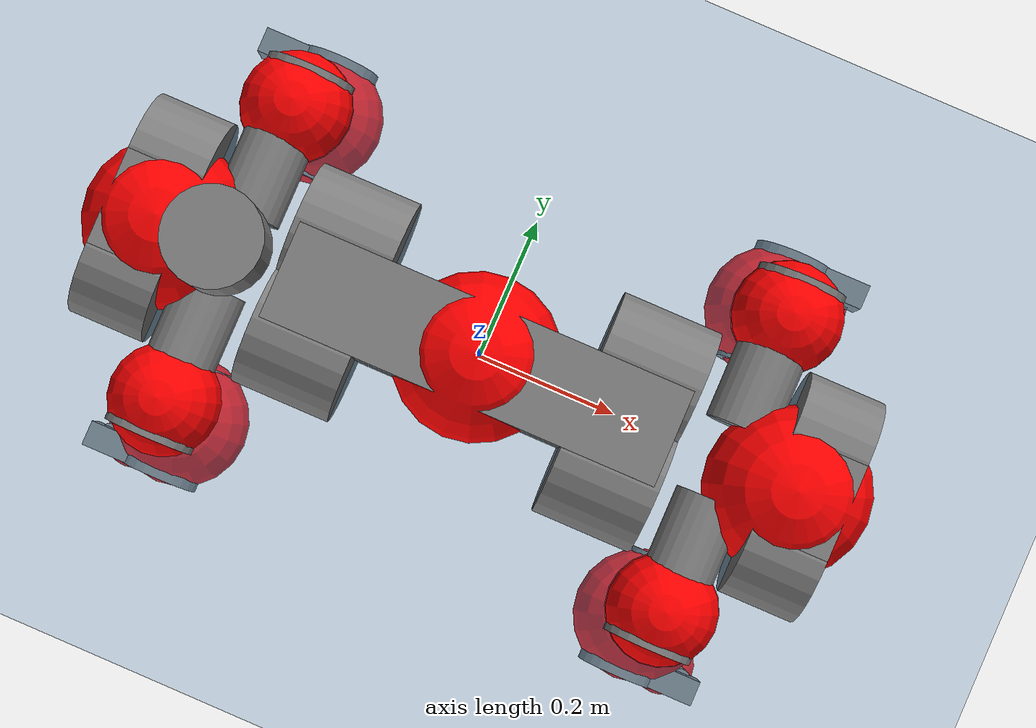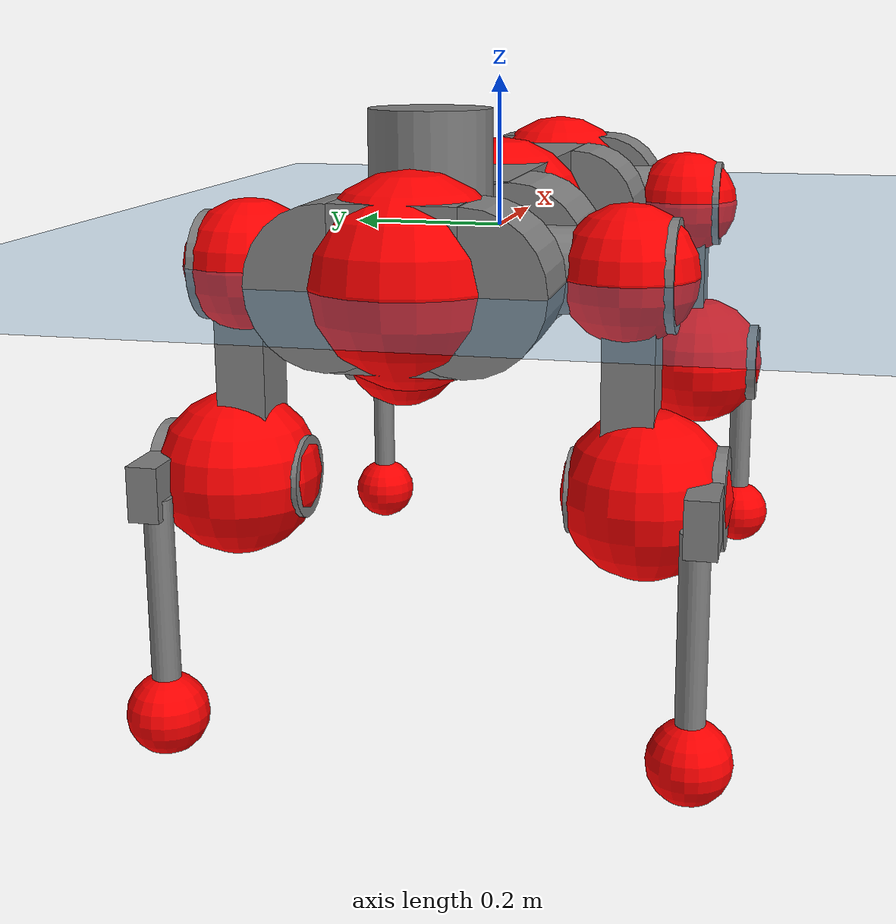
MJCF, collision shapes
<mujoco model="anymal_c">
  <compiler angle="radian" assetdir="assets" balanceinertia="true" inertiafromgeom="false"/>

  <option timestep="0.005" density="1.2" viscosity="2e-05"/>

  <size nkey="1"/>

  <visual>
    <quality shadowsize="8192"/>
    <map shadowclip="0.5"/>
  </visual>

  <default>
    <default class="/">
      <material specular="0" shininess="0.25"/>
      <geom contype="0" conaffinity="0" group="1" solref="-1000 -80"/>
      <site size="0.01 0.005 0.005" group="5"/>
      <general forcelimited="true" forcerange="-80 80" biastype="affine" gainprm="80" biasprm="0 -80 -2"/>
      <default class="anymal_c">
        <joint armature="0.01" damping="0.01" frictionloss="0.1"/>
        <default class="visual">
          <geom type="mesh" group="2"/>
          <default class="visual_zflip"/>
        </default>
        <default class="collision">
          <geom type="cylinder" group="3"/>
          <default class="foot">
            <geom size="0.03 0 0" type="sphere" condim="6" priority="1" friction="0.8 0.02 0.01" solimp="0.015 1 0.03"/>
          </default>
        </default>
      </default>
      <default class="reward_collision_sphere">
        <geom group="5" rgba="1 0 0 1"/>
      </default>
    </default>
  </default>

  <asset>
    <texture type="skybox" colorspace="auto" name="//unnamed_texture_0" builtin="gradient" rgb1="0.95 0.95 0.95" rgb2="0.95 0.95 0.95" width="100" height="600"/>
    <texture type="2d" colorspace="auto" name="texplane" builtin="checker" rgb1="0.345 0.575 0.748" rgb2="0.345 0.575 0.748" markrgb="1 1 1" width="512" height="512"/>
    <texture type="2d" colorspace="linear" name="base" file="base.png"/>
    <texture type="2d" colorspace="linear" name="top_shell" file="top_shell.png"/>
    <texture type="2d" colorspace="linear" name="bottom_shell" file="bottom_shell.png"/>
    <texture type="2d" colorspace="linear" name="remote" file="remote.png"/>
    <texture type="2d" colorspace="linear" name="hatch" file="hatch.png"/>
    <texture type="2d" colorspace="linear" name="handle" file="handle.png"/>
    <texture type="2d" colorspace="linear" name="face" file="face.png"/>
    <texture type="2d" colorspace="linear" name="battery" file="battery.png"/>
    <texture type="2d" colorspace="linear" name="lidar_cage" file="lidar_cage.png"/>
    <texture type="2d" colorspace="linear" name="depth_camera" file="depth_camera.png"/>
    <texture type="2d" colorspace="linear" name="wide_angle_camera" file="wide_angle_camera.png"/>
    <texture type="2d" colorspace="linear" name="lidar" file="lidar.png"/>
    <texture type="2d" colorspace="linear" name="drive" file="drive.png"/>
    <texture type="2d" colorspace="linear" name="hip_l" file="hip_l.png"/>
    <texture type="2d" colorspace="linear" name="shank_l" file="shank_l.png"/>
    <texture type="2d" colorspace="linear" name="foot" file="foot.png"/>
    <texture type="2d" colorspace="linear" name="thigh" file="thigh.png"/>
    <texture type="2d" colorspace="linear" name="shank_r" file="shank_r.png"/>
    <texture type="2d" colorspace="linear" name="hip_r" file="hip_r.png"/>
    <material name="MatPlane" class="/" texture="texplane" texuniform="true" texrepeat="2 2" specular="0.9" shininess="0.5"/>
    <material name="black_plastic" class="/" rgba="0.007 0.007 0.007 1"/>
    <material name="green" class="/" rgba="0.052 0.178 0.033 1"/>
    <material name="red" class="/" rgba="0.178 0.006 0.005 1"/>
    <material name="yellow" class="/" rgba="0.178 0.119 0.006 1"/>
    <material name="lwl" class="/" rgba="0.8 0.8 0.8 1"/>
    <material name="base" class="/" texture="base"/>
    <material name="top_shell" class="/" texture="top_shell"/>
    <material name="bottom_shell" class="/" texture="bottom_shell"/>
    <material name="hip_l" class="/" texture="hip_l"/>
    <material name="thigh" class="/" texture="thigh"/>
    <material name="shank_l" class="/" texture="shank_l"/>
    <material name="foot" class="/" texture="foot"/>
    <material name="hip_r" class="/" texture="hip_r"/>
    <material name="shank" class="/" texture="shank_r"/>
    <material name="hatch" class="/" texture="hatch"/>
    <material name="remote" class="/" texture="remote"/>
    <material name="handle" class="/" texture="handle"/>
    <material name="face" class="/" texture="face"/>
    <material name="depth_camera" class="/" texture="depth_camera"/>
    <material name="wide_angle_camera" class="/" texture="wide_angle_camera"/>
    <material name="battery" class="/" texture="battery"/>
    <material name="lidar_cage" class="/" texture="lidar_cage"/>
    <material name="lidar" class="/" texture="lidar"/>
    <material name="drive" class="/" texture="drive"/>
    <mesh name="base_0" class="/" file="base_0.obj"/>
    <mesh name="base_1" class="/" file="base_1.obj"/>
    <mesh name="base_2" class="/" file="base_2.obj"/>
    <mesh name="base_3" class="/" file="base_3.obj"/>
    <mesh name="base_4" class="/" file="base_4.obj"/>
    <mesh name="base_5" class="/" file="base_5.obj"/>
    <mesh name="top_shell" class="/" file="top_shell.obj"/>
    <mesh name="bottom_shell" class="/" file="bottom_shell.obj"/>
    <mesh name="remote" class="/" file="remote.obj"/>
    <mesh name="handle" class="/" file="handle.obj"/>
    <mesh name="face" class="/" file="face.obj"/>
    <mesh name="wide_angle_camera" class="/" file="wide_angle_camera.obj"/>
    <mesh name="depth_camera" class="/" file="depth_camera.obj"/>
    <mesh name="battery" class="/" file="battery.obj"/>
    <mesh name="lidar_cage" class="/" file="lidar_cage.obj"/>
    <mesh name="lidar" class="/" file="lidar.obj"/>
    <mesh name="drive" class="/" file="drive.obj"/>
    <mesh name="hip_l" class="/" file="hip_l.obj"/>
    <mesh name="thigh" class="/" file="thigh.obj"/>
    <mesh name="shank_l" class="/" file="shank_l.obj"/>
    <mesh name="foot" class="/" file="foot.obj"/>
    <mesh name="hip_r" class="/" file="hip_r.obj"/>
    <mesh name="hatch" class="/" file="hatch.obj"/>
    <mesh name="shank_r" class="/" file="shank_r.obj"/>
  </asset>

  <worldbody>
    <geom name="floor" class="/" size="100 100 0.125" type="plane" group="0" material="MatPlane"/>
    <light name="toplight_shadow" class="/" pos="0 0 5" dir="0.0990148 0.0990148 -0.990148" type="directional" ambient="0.04 0.04 0.04" diffuse="0.55 0.55 0.55" specular="0.12 0.12 0.12"/>
    <light name="toplight_fill" class="/" pos="0 0 5" dir="0.0990148 0.0990148 -0.990148" type="directional" castshadow="false" ambient="0.04 0.04 0.04" diffuse="0.3 0.3 0.3" specular="0.08 0.08 0.08"/>
    <body name="trunk" childclass="anymal_c" pos="-0.00263948 -0.00234987 -0.000179138" quat="0.999999 0.000104972 0.001265 0.000483635">
      <inertial pos="3.84568e-05 0.000781193 0.0443269" quat="0.499436 0.500041 0.500162 0.500361" mass="18.2397" diaginertia="0.74025 0.803211 0.120824"/>
      <joint name="//unnamed_joint_0" type="free" armature="0" damping="0" frictionloss="0"/>
      <geom name="//unnamed_geom_1" class="visual" material="green" mesh="base_0"/>
      <geom name="//unnamed_geom_2" class="visual" material="yellow" mesh="base_1"/>
      <geom name="//unnamed_geom_3" class="visual" material="red" mesh="base_2"/>
      <geom name="//unnamed_geom_4" class="visual" material="black_plastic" mesh="base_3"/>
      <geom name="//unnamed_geom_5" class="visual" material="lwl" mesh="base_4"/>
      <geom name="//unnamed_geom_6" class="visual" material="base" mesh="base_5"/>
      <geom name="trunk_1" class="collision" size="0.286973 0.0692692 0.0890604" type="box"/>
      <geom name="trunk_2" class="collision" size="0.0890604 0.0717431" pos="0.223943 0.0738048 0" quat="0.707107 0 0.707107 0"/>
      <geom name="trunk_3" class="collision" size="0.0890604 0.0717431" pos="-0.223943 0.0738048 0" quat="0.707107 0 0.707107 0"/>
      <geom name="trunk_4" class="collision" size="0.0890604 0.0717431" pos="0.223943 -0.0738048 0" quat="0.707107 0 0.707107 0"/>
      <geom name="trunk_5" class="collision" size="0.0890604 0.0717431" pos="-0.223943 -0.0738048 0" quat="0.707107 0 0.707107 0"/>
      <geom name="//unnamed_geom_12" class="visual" material="top_shell" mesh="top_shell"/>
      <geom name="//unnamed_geom_13" class="visual" material="bottom_shell" mesh="bottom_shell"/>
      <geom name="//unnamed_geom_14" class="visual" material="remote" mesh="remote"/>
      <geom name="//unnamed_geom_15" class="visual" material="handle" mesh="handle"/>
      <geom name="//unnamed_geom_16" class="visual" pos="0.426779 0 0" quat="1 0 0 0" material="face" mesh="face"/>
      <geom name="trunk_6" class="collision" size="0.0544258 0.0692692 0.0890604" pos="0.483408 0 0" type="box"/>
      <geom name="//unnamed_geom_18" class="collision" size="0.0890604 0.0544258" pos="0.483408 0.0738048 0" quat="0.707107 0 0.707107 0"/>
      <geom name="//unnamed_geom_19" class="collision" size="0.0890604 0.0544258" pos="0.483408 -0.0738048 0" quat="0.707107 0 0.707107 0"/>
      <geom name="//unnamed_geom_20" class="visual" pos="0.475319 0 -0.024732" quat="0.965926 0 0.258819 0" material="depth_camera" mesh="depth_camera"/>
      <geom name="//unnamed_geom_21" class="visual" pos="0.528197 0 0.013244" material="wide_angle_camera" mesh="wide_angle_camera"/>
      <geom name="//unnamed_geom_22" class="visual_zflip" pos="-0.426779 0 0" quat="0 0 0 1" material="face" mesh="face"/>
      <geom name="trunk_7" class="collision" size="0.0544258 0.0692692 0.0890604" pos="-0.483408 0 0" quat="0 0 0 1" type="box"/>
      <geom name="//unnamed_geom_24" class="collision" size="0.0890604 0.0544258" pos="-0.483408 -0.0738048 0" quat="0 -0.707107 0 0.707107"/>
      <geom name="//unnamed_geom_25" class="collision" size="0.0890604 0.0544258" pos="-0.483408 0.0738048 0" quat="0 -0.707107 0 0.707107"/>
      <geom name="//unnamed_geom_26" class="visual" pos="-0.475319 0 -0.024732" quat="0 -0.258819 0 0.965926" material="depth_camera" mesh="depth_camera"/>
      <geom name="//unnamed_geom_27" class="visual_zflip" pos="-0.528197 0 0.013244" quat="0 0 0 1" material="wide_angle_camera" mesh="wide_angle_camera"/>
      <geom name="//unnamed_geom_28" class="visual" material="battery" mesh="battery"/>
      <geom name="//unnamed_geom_29" class="visual" pos="0 0.0809345 0.026802" quat="0.683013 -0.183013 0.183013 0.683013" material="depth_camera" mesh="depth_camera"/>
      <geom name="//unnamed_geom_30" class="visual" pos="0 -0.0809345 0.026802" quat="0.683013 0.183013 0.183013 -0.683013" material="depth_camera" mesh="depth_camera"/>
      <geom name="//unnamed_geom_31" class="visual" pos="-0.374783 0 0.0650257" quat="1 0 0 0" material="lidar_cage" mesh="lidar_cage"/>
      <geom name="trunk_8" class="collision" size="0.0692692 0.0593736" pos="-0.374783 0 0.118108"/>
      <geom name="//unnamed_geom_33" class="visual" pos="-0.374783 9.71652e-06 0.125805" quat="0.707107 0 0 -0.707107" material="lidar" mesh="lidar"/>
      <geom name="//unnamed_geom_34" class="visual" pos="0.308784 0.109593 2.92651e-09" quat="0.258819 0.965926 0 0" material="drive" mesh="drive"/>
      <geom name="//unnamed_geom_35" class="visual" pos="0.308784 -0.109593 -2.92651e-09" quat="0.258819 -0.965926 0 0" material="drive" mesh="drive"/>
      <geom name="//unnamed_geom_36" class="visual" pos="-0.308784 0.109593 -2.92651e-09" quat="0 0 0.965926 -0.258819" material="drive" mesh="drive"/>
      <geom name="//unnamed_geom_37" class="visual" pos="-0.308784 -0.109593 2.92651e-09" quat="0 0 -0.965926 -0.258819" material="drive" mesh="drive"/>
      <geom name="//unnamed_geom_38" class="visual" pos="0.119436 0 0.0645834" quat="1 0 0 0" material="hatch" mesh="hatch"/>
      <geom name="//unnamed_geom_39" class="reward_collision_sphere" size="0.118747"/>
      <geom name="//unnamed_geom_40" class="reward_collision_sphere" size="0.118747" pos="0.46333 0 0"/>
      <geom name="//unnamed_geom_41" class="reward_collision_sphere" size="0.118747" pos="-0.46333 0 0"/>
      <site name="imu" pos="0.25889 0.0084913 0.0447875" size="0.0098956"/>
      <camera name="track" pos="0 -2.10871 0" quat="0.707107 0.707107 0 0" mode="trackcom"/>
      <camera name="ego_camera" pos="0.46333 0 -0.0353881" quat="-0.5 -0.5 0.5 0.5"/>
      <body name="LF_HIP" pos="0.308188 0.108391 0.0010242" quat="0.259465 0.965752 0.000122636 -0.000982984">
        <inertial pos="0.0559354 -0.0170054 -0.00851676" quat="-0.128652 0.709116 -0.135416 0.679901" mass="2.81782" diaginertia="0.00710235 0.00640521 0.00187865"/>
        <joint name="LF_HAA" pos="0 0 0" axis="0.999993 -0.00337396 -0.00172632" range="-0.720233 0.434158" armature="0.0111944" damping="0" frictionloss="0.101087"/>
        <geom name="//unnamed_geom_42" class="visual" pos="0 0.000172153 -2.8276e-05" quat="0.258819 -0.965926 0 0" material="hip_l" mesh="hip_l"/>
        <geom name="//unnamed_geom_43" class="visual" pos="0.0616744 -0.074997 -0.0420447" quat="0.183013 -0.683013 0.683013 0.183013" material="drive" mesh="drive"/>
        <geom name="//unnamed_geom_44" class="collision" size="0.049478 0.0692692" pos="0.0616744 -0.0126099 -0.00610888" quat="-0.353553 -0.612372 0.612372 -0.353553"/>
        <body name="LF_THIGH" pos="0.0626734 -0.0783213 -0.0369895" quat="0.183022 -0.683115 0.682903 0.183033">
          <inertial pos="0.0345073 0.00037016 -0.214505" quat="0.99316 -0.00499299 -0.0807355 0.0842036" mass="3.00516" diaginertia="0.0351256 0.038515 0.00226207"/>
          <joint name="LF_HFE" pos="0 0 0" axis="0.999982 0.000464884 0.00601669" stiffness="0.0115047" range="-3.19841 3.18964" armature="0.0112131" damping="0" frictionloss="0.104285"/>
          <geom name="//unnamed_geom_45" class="visual" pos="-0.000492069 -7.75385e-07 0" quat="0.707107 0 0 -0.707107" material="thigh" mesh="thigh"/>
          <geom name="//unnamed_geom_46" class="collision" size="0.0643214 0.0395824" pos="0.0411849 0 0" quat="0.5 0.5 -0.5 -0.5"/>
          <geom name="//unnamed_geom_47" class="collision" size="0.0371085 0.0296868 0.139839" pos="0.0308887 0 -0.125021" quat="0.707107 0 0 -0.707107" type="box"/>
          <geom name="//unnamed_geom_48" class="visual" pos="0.103271 0 -0.25214" quat="1 0 0 0" material="drive" mesh="drive"/>
          <geom name="//unnamed_geom_49" class="collision" size="0.049478 0.0692692" pos="0.0311976 0 -0.25214" quat="0.707107 0 0.707107 0"/>
          <geom name="//unnamed_geom_50" class="reward_collision_sphere" size="0.0791648" pos="0.0257406 0 0"/>
          <body name="LF_SHANK" pos="0.102865 -0.00101364 -0.252605" quat="1 -0.000379411 0.000408321 0.000818162">
            <inertial pos="0.00736288 -0.0632328 -0.0739504" quat="0.991272 -0.128777 0.00325095 -0.0280401" mass="0.564496" diaginertia="0.0118032 0.0121976 0.000589512"/>
            <joint name="LF_KFE" pos="0 0 0" axis="0.999991 -0.00136117 0.00401418" range="-3.13492 3.0842" armature="0.00912741" damping="0.00981756" frictionloss="0.103346"/>
            <geom name="//unnamed_geom_51" class="visual" pos="-0.000160453 -0.000855543 0" quat="0.707107 0 0 -0.707107" material="shank_l" mesh="shank_l"/>
            <geom name="LF_kfe_act" class="collision" size="0.0593736 0.0197912" pos="0.0205925 0 0" quat="0.5 0.5 -0.5 -0.5"/>
            <geom name="//unnamed_geom_53" class="collision" size="0.0568987 0.0333977 0.0188016" pos="0.0205925 -0.0606244 0" quat="0.5 0.5 -0.5 -0.5" type="box"/>
            <geom name="//unnamed_geom_54" class="visual" pos="0.0134366 -0.0930062 -0.299003" quat="0.382683 0 0 -0.92388" material="foot" mesh="foot"/>
            <geom name="LF_calf" class="collision" size="0.0173173 0.139777" pos="0.0134366 -0.0927305 -0.149502" quat="0.707107 0 0 -0.707107"/>
            <geom name="LF_foot" class="foot" size="0.0323935" pos="0.0134366 -0.0927305 -0.279097" quat="0.707107 0 0 -0.707107"/>
            <geom name="//unnamed_geom_57" class="reward_collision_sphere" size="0.098956" pos="-0.0514812 0 0"/>
            <geom name="//unnamed_geom_58" class="reward_collision_sphere" size="0.049478" pos="0.0134366 -0.0927305 -0.279097"/>
            <site name="LF_foot" class="foot" pos="0.0134366 -0.0927305 -0.279097" quat="0.707107 0 0 -0.707107" size="0.0098956"/>
          </body>
        </body>
      </body>
      <body name="RF_HIP" pos="0.309366 -0.107469 0.00124126" quat="0.25893 -0.965896 7.30112e-06 9.86478e-05">
        <inertial pos="0.0611445 0.0159574 -0.00752693" quat="0.136302 0.679566 0.128871 0.709227" mass="2.84452" diaginertia="0.0070621 0.00668252 0.0017892"/>
        <joint name="RF_HAA" pos="0 0 0" axis="1 7.2533e-05 0.000183889" range="-0.461887 0.732855" armature="0.00867217" damping="0.0101028" frictionloss="0.111833"/>
        <geom name="//unnamed_geom_59" class="visual" pos="0 -0.000172152 -2.82759e-05" quat="0.258819 0.965926 0 0" material="hip_r" mesh="hip_r"/>
        <geom name="//unnamed_geom_60" class="visual" pos="0.0616744 0.074997 -0.0420447" quat="0.183013 0.683013 0.683013 -0.183013" material="drive" mesh="drive"/>
        <geom name="//unnamed_geom_61" class="collision" size="0.049478 0.0692692" pos="0.0616744 0.0126099 -0.00610888" quat="-0.353553 0.612372 0.612372 0.353553"/>
        <body name="RF_THIGH" pos="0.0607729 0.0766411 -0.0347496" quat="0.184039 0.682307 0.683443 -0.183012">
          <inertial pos="0.0293918 -0.00262044 -0.21622" quat="0.992831 -0.000739924 -0.0809169 0.0879636" mass="2.88872" diaginertia="0.035085 0.0387007 0.00219305"/>
          <joint name="RF_HFE" pos="0 0 0" axis="0.999999 -0.00142823 0.000272261" stiffness="0.00880754" range="-3.13119 3.14006" armature="0.00995239" damping="0.0102137" frictionloss="0.101364"/>
          <geom name="//unnamed_geom_62" class="visual" pos="-0.000492069 -7.75385e-07 0" quat="0.707107 0 0 -0.707107" material="thigh" mesh="thigh"/>
          <geom name="//unnamed_geom_63" class="collision" size="0.0643214 0.0395824" pos="0.0411849 0 0" quat="0.5 0.5 0.5 0.5"/>
          <geom name="//unnamed_geom_64" class="collision" size="0.0371085 0.0296868 0.139839" pos="0.0308887 0 -0.125021" quat="0.707107 0 0 0.707107" type="box"/>
          <geom name="//unnamed_geom_65" class="visual" pos="0.103271 0 -0.25214" quat="1 0 0 0" material="drive" mesh="drive"/>
          <geom name="//unnamed_geom_66" class="collision" size="0.049478 0.0692692" pos="0.0311976 0 -0.25214" quat="0.707107 0 0.707107 0"/>
          <geom name="//unnamed_geom_67" class="reward_collision_sphere" size="0.0791648" pos="0.0257406 0 0"/>
          <body name="RF_SHANK" pos="0.105076 -0.000216362 -0.250737" quat="1 7.49957e-05 -8.78216e-05 -6.05575e-05">
            <inertial pos="0.00723386 0.0647071 -0.0704217" quat="0.992911 0.116902 0.000875871 0.0214764" mass="0.583745" diaginertia="0.0125859 0.0120688 0.000630237"/>
            <joint name="RF_KFE" pos="0 0 0" axis="0.999898 -0.0119041 0.0079368" range="-3.12055 3.14975" armature="0.00992455" damping="0.0154362" frictionloss="0.0945091"/>
            <geom name="//unnamed_geom_68" class="visual" pos="-0.000160452 0.000855541 0" quat="0.707107 0 0 0.707107" material="shank" mesh="shank_r"/>
            <geom name="RF_kfe_act" class="collision" size="0.0593736 0.0197912" pos="0.0205925 0 0" quat="0.5 0.5 0.5 0.5"/>
            <geom name="//unnamed_geom_70" class="collision" size="0.0568987 0.0333977 0.0188016" pos="0.0205925 0.0606244 0" quat="0.5 0.5 0.5 0.5" type="box"/>
            <geom name="//unnamed_geom_71" class="visual" pos="0.0134365 0.0930062 -0.299003" quat="0.382683 0 0 0.92388" material="foot" mesh="foot"/>
            <geom name="RF_calf" class="collision" size="0.0173173 0.139777" pos="0.0134366 0.0927305 -0.149502" quat="0.707107 0 0 0.707107"/>
            <geom name="RF_foot" class="foot" size="0.0286145" pos="0.0134366 0.0927305 -0.279097" quat="0.707107 0 0 0.707107"/>
            <geom name="//unnamed_geom_74" class="reward_collision_sphere" size="0.098956" pos="-0.0514812 0 0"/>
            <geom name="//unnamed_geom_75" class="reward_collision_sphere" size="0.049478" pos="0.0134366 0.0927305 -0.279097"/>
            <site name="RF_foot" class="foot" pos="0.0134366 0.0927305 -0.279097" quat="0.707107 0 0 0.707107" size="0.0098956"/>
          </body>
        </body>
      </body>
      <body name="LH_HIP" pos="-0.307501 0.108581 0.00217074" quat="0.000133936 0.00103402 0.965983 -0.258602">
        <inertial pos="0.0610941 0.0169674 -0.00783364" quat="0.135214 0.679083 0.128017 0.710053" mass="2.66983" diaginertia="0.00679947 0.00663479 0.00180916"/>
        <joint name="LH_HAA" pos="0 0 0" axis="0.99998 -0.00534053 0.00328916" stiffness="0.000563691" range="-0.471984 0.70335" armature="0.00997485" damping="0.0104217" frictionloss="0.0995835"/>
        <geom name="//unnamed_geom_76" class="visual" pos="0 -0.000172152 -2.82759e-05" quat="-0.258819 -0.965926 0 0" material="hip_r" mesh="hip_r"/>
        <geom name="//unnamed_geom_77" class="visual" pos="0.0616744 0.074997 -0.0420447" quat="0.183013 0.683013 0.683013 -0.183013" material="drive" mesh="drive"/>
        <geom name="//unnamed_geom_78" class="collision" size="0.049478 0.0692692" pos="0.0616744 0.0126099 -0.00610888" quat="-0.353553 0.612372 0.612372 0.353553"/>
        <body name="LH_THIGH" pos="0.0583676 0.077448 -0.0348723" quat="0.183232 0.68364 0.682171 -0.183592">
          <inertial pos="0.0313269 0.000949762 -0.216155" quat="0.991662 0.00503518 -0.0841286 0.0974841" mass="2.86806" diaginertia="0.0346472 0.0375984 0.00225524"/>
          <joint name="LH_HFE" pos="0 0 0" axis="0.999999 0.00107231 0.00111705" range="-3.12188 3.13081" armature="0.00891237" damping="0" frictionloss="0.0998318"/>
          <geom name="//unnamed_geom_79" class="visual" pos="-0.000492069 -7.75385e-07 0" quat="0.707107 0 0 -0.707107" material="thigh" mesh="thigh"/>
          <geom name="//unnamed_geom_80" class="collision" size="0.0643214 0.0395824" pos="0.0411849 0 0" quat="0.5 0.5 -0.5 -0.5"/>
          <geom name="//unnamed_geom_81" class="collision" size="0.0371085 0.0296868 0.139839" pos="0.0308887 0 -0.125021" quat="0.707107 0 0 -0.707107" type="box"/>
          <geom name="//unnamed_geom_82" class="visual" pos="0.103271 0 -0.25214" quat="1 0 0 0" material="drive" mesh="drive"/>
          <geom name="//unnamed_geom_83" class="collision" size="0.049478 0.0692692" pos="0.0311976 0 -0.25214" quat="0.707107 0 0.707107 0"/>
          <geom name="//unnamed_geom_84" class="reward_collision_sphere" size="0.0791648" pos="0.0257406 0 0"/>
          <body name="LH_SHANK" pos="0.102992 -0.00138074 -0.251656" quat="1 -8.71373e-05 -4.45275e-05 2.88776e-06">
            <inertial pos="0.00558442 0.0645315 -0.0697038" quat="0.993027 0.11519 -0.0010755 0.0250335" mass="0.566761" diaginertia="0.0117989 0.012114 0.000605552"/>
            <joint name="LH_KFE" pos="0 0 0" axis="1 0.000412261 -0.000305493" stiffness="0.00158337" range="-3.12761 3.13847" armature="0.0096711" damping="0" frictionloss="0.0962208"/>
            <geom name="//unnamed_geom_85" class="visual" pos="-0.000160452 0.000855541 0" quat="-0.707107 0 0 -0.707107" material="shank" mesh="shank_r"/>
            <geom name="LH_kfe_act" class="collision" size="0.0593736 0.0197912" pos="0.0205925 0 0" quat="0.5 0.5 -0.5 -0.5"/>
            <geom name="//unnamed_geom_87" class="collision" size="0.0568987 0.0333977 0.0188016" pos="0.0205925 0.0606244 0" quat="0.5 0.5 -0.5 -0.5" type="box"/>
            <geom name="//unnamed_geom_88" class="visual" pos="0.0134365 0.0930062 -0.299003" quat="-0.382683 0 0 -0.92388" material="foot" mesh="foot"/>
            <geom name="LH_calf" class="collision" size="0.0173173 0.139777" pos="0.0134366 0.0927305 -0.149502" quat="0.707107 0 0 -0.707107"/>
            <geom name="LH_foot" class="foot" size="0.0331365" pos="0.0134366 0.0927305 -0.279097" quat="0.707107 0 0 -0.707107"/>
            <geom name="//unnamed_geom_91" class="reward_collision_sphere" size="0.098956" pos="-0.0514812 0 0"/>
            <geom name="//unnamed_geom_92" class="reward_collision_sphere" size="0.049478" pos="0.0134366 0.0927305 -0.279097"/>
            <site name="LH_foot" class="foot" pos="0.0134366 0.0927305 -0.279097" quat="0.707107 0 0 -0.707107" size="0.0098956"/>
          </body>
        </body>
      </body>
      <body name="RH_HIP" pos="-0.309107 -0.112041 0.00285119" quat="1.58408e-05 -0.000798073 -0.966185 -0.257848">
        <inertial pos="0.058455 -0.0135605 -0.00758853" quat="-0.129365 0.700354 -0.140825 0.687704" mass="2.67695" diaginertia="0.0068729 0.00652461 0.00176596"/>
        <joint name="RH_HAA" pos="0 0 0" axis="0.999986 0.00492491 -0.00178592" stiffness="0.00905043" range="-0.743107 0.49913" armature="0.0113398" damping="0.0206825" frictionloss="0.0852157"/>
        <geom name="//unnamed_geom_93" class="visual" pos="0 0.000172153 -2.8276e-05" quat="-0.258819 0.965926 0 0" material="hip_l" mesh="hip_l"/>
        <geom name="//unnamed_geom_94" class="visual" pos="0.0616744 -0.074997 -0.0420447" quat="-0.183013 0.683013 -0.683013 -0.183013" material="drive" mesh="drive"/>
        <geom name="//unnamed_geom_95" class="collision" size="0.049478 0.0692692" pos="0.0616744 -0.0126099 -0.00610888" quat="0.353553 0.612372 -0.612372 0.353553"/>
        <body name="RH_THIGH" pos="0.0611692 -0.0758245 -0.0397405" quat="-0.183082 0.68314 -0.682853 -0.183063">
          <inertial pos="0.0316549 -0.00127156 -0.21706" quat="0.993185 -0.00497042 -0.0798913 0.0847149" mass="2.93861" diaginertia="0.0348174 0.0389637 0.00218881"/>
          <joint name="RH_HFE" pos="0 0 0" axis="0.999995 0.00103359 0.00299998" range="-3.19573 3.18341" armature="0.0105928" damping="0.0136791" frictionloss="0.103061"/>
          <geom name="//unnamed_geom_96" class="visual" pos="-0.000492069 -7.75385e-07 0" quat="0.707107 0 0 -0.707107" material="thigh" mesh="thigh"/>
          <geom name="//unnamed_geom_97" class="collision" size="0.0643214 0.0395824" pos="0.0411849 0 0" quat="0.5 0.5 0.5 0.5"/>
          <geom name="//unnamed_geom_98" class="collision" size="0.0371085 0.0296868 0.139839" pos="0.0308887 0 -0.125021" quat="0.707107 0 0 0.707107" type="box"/>
          <geom name="//unnamed_geom_99" class="visual" pos="0.103271 0 -0.25214" quat="1 0 0 0" material="drive" mesh="drive"/>
          <geom name="//unnamed_geom_100" class="collision" size="0.049478 0.0692692" pos="0.0311976 0 -0.25214" quat="0.707107 0 0.707107 0"/>
          <geom name="//unnamed_geom_101" class="reward_collision_sphere" size="0.0791648" pos="0.0257406 0 0"/>
          <body name="RH_SHANK" pos="0.100698 0.00295019 -0.252738" quat="1 0.000454127 -0.000141591 -0.000136405">
            <inertial pos="0.00801252 -0.0646294 -0.0699393" quat="0.992978 -0.115521 -0.00184878 -0.0254103" mass="0.56869" diaginertia="0.0115921 0.0112923 0.000603192"/>
            <joint name="RH_KFE" pos="0 0 0" axis="0.999991 0.00379631 0.00176649" range="-3.07494 3.18192" armature="0.00845649" damping="0.00247136" frictionloss="0.0952894"/>
            <geom name="//unnamed_geom_102" class="visual" pos="-0.000160453 -0.000855543 0" quat="0.707107 0 0 -0.707107" material="shank_l" mesh="shank_l"/>
            <geom name="RH_kfe_act" class="collision" size="0.0593736 0.0197912" pos="0.0205925 0 0" quat="0.5 0.5 0.5 0.5"/>
            <geom name="//unnamed_geom_104" class="collision" size="0.0568987 0.0333977 0.0188016" pos="0.0205925 -0.0606244 0" quat="0.5 0.5 0.5 0.5" type="box"/>
            <geom name="//unnamed_geom_105" class="visual" pos="0.0134366 -0.0930062 -0.299003" quat="0.382683 0 0 -0.92388" material="foot" mesh="foot"/>
            <geom name="RH_calf" class="collision" size="0.0173173 0.139777" pos="0.0134366 -0.0927305 -0.149502" quat="0.707107 0 0 0.707107"/>
            <geom name="RH_foot" class="foot" size="0.0294012" pos="0.0134366 -0.0927305 -0.279097" quat="0.707107 0 0 0.707107"/>
            <geom name="//unnamed_geom_108" class="reward_collision_sphere" size="0.098956" pos="-0.0514812 0 0"/>
            <geom name="//unnamed_geom_109" class="reward_collision_sphere" size="0.049478" pos="0.0134366 -0.0927305 -0.279097"/>
            <site name="RH_foot" class="foot" pos="0.0134366 -0.0927305 -0.279097" quat="0.707107 0 0 0.707107" size="0.0098956"/>
          </body>
        </body>
      </body>
    </body>
  </worldbody>

  <contact>
    <pair class="/" geom1="floor" geom2="LF_foot" name="//unnamed_contact_0"/>
    <pair class="/" geom1="floor" geom2="RF_foot" name="//unnamed_contact_1"/>
    <pair class="/" geom1="floor" geom2="LH_foot" name="//unnamed_contact_2"/>
    <pair class="/" geom1="floor" geom2="RH_foot" name="//unnamed_contact_3"/>
  </contact>

  <actuator>
    <general name="LF_HAA" class="/" joint="LF_HAA" forcerange="-78.6903 78.6903" gainprm="79.3" biasprm="0 -79.3 -1.8978"/>
    <general name="LF_HFE" class="/" joint="LF_HFE" forcerange="-76.0311 76.0311" gainprm="79.3" biasprm="0 -79.3 -1.8978"/>
    <general name="LF_KFE" class="/" joint="LF_KFE" forcerange="-78.8181 78.8181" gainprm="79.3" biasprm="0 -79.3 -1.8978"/>
    <general name="RF_HAA" class="/" joint="RF_HAA" forcerange="-86.6772 86.6772" gainprm="79.3" biasprm="0 -79.3 -1.8978"/>
    <general name="RF_HFE" class="/" joint="RF_HFE" forcerange="-79.9594 79.9594" gainprm="79.3" biasprm="0 -79.3 -1.8978"/>
    <general name="RF_KFE" class="/" joint="RF_KFE" forcerange="-71.8576 71.8576" gainprm="79.3" biasprm="0 -79.3 -1.8978"/>
    <general name="LH_HAA" class="/" joint="LH_HAA" forcerange="-80.0091 80.0091" gainprm="79.3" biasprm="0 -79.3 -1.8978"/>
    <general name="LH_HFE" class="/" joint="LH_HFE" forcerange="-80.3019 80.3019" gainprm="79.3" biasprm="0 -79.3 -1.8978"/>
    <general name="LH_KFE" class="/" joint="LH_KFE" forcerange="-79.0849 79.0849" gainprm="79.3" biasprm="0 -79.3 -1.8978"/>
    <general name="RH_HAA" class="/" joint="RH_HAA" forcerange="-76.3917 76.3917" gainprm="79.3" biasprm="0 -79.3 -1.8978"/>
    <general name="RH_HFE" class="/" joint="RH_HFE" forcerange="-81.1806 81.1806" gainprm="79.3" biasprm="0 -79.3 -1.8978"/>
    <general name="RH_KFE" class="/" joint="RH_KFE" forcerange="-87.5081 87.5081" gainprm="79.3" biasprm="0 -79.3 -1.8978"/>
  </actuator>

  <sensor>
    <gyro site="imu" name="imu_angular_velocity"/>
    <velocimeter site="imu" name="imu_linear_velocity"/>
    <framelinvel objtype="site" objname="LF_foot" name="LF_foot_global_linear_velocity"/>
    <framelinvel objtype="site" objname="RF_foot" name="RF_foot_global_linear_velocity"/>
    <framelinvel objtype="site" objname="LH_foot" name="LH_foot_global_linear_velocity"/>
    <framelinvel objtype="site" objname="RH_foot" name="RH_foot_global_linear_velocity"/>
  </sensor>

  <keyframe>
    <key name="home" qpos="0 0 0.55 1 0 0 0 0 0.4 -0.8 0 -0.4 0.8 0 -0.4 0.8 0 0.4 -0.8"/>
  </keyframe>
</mujoco>
